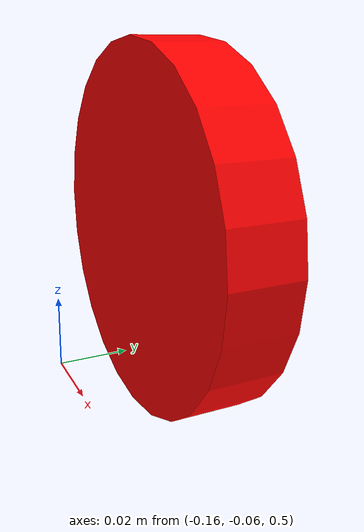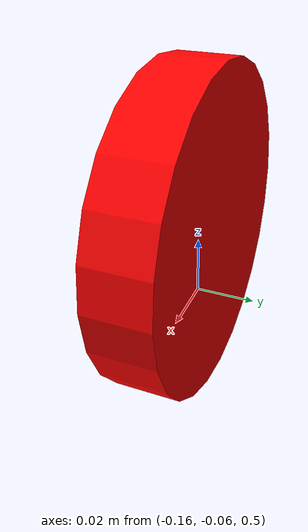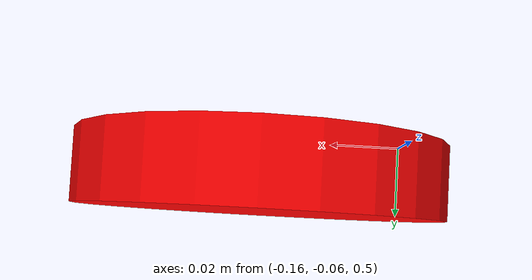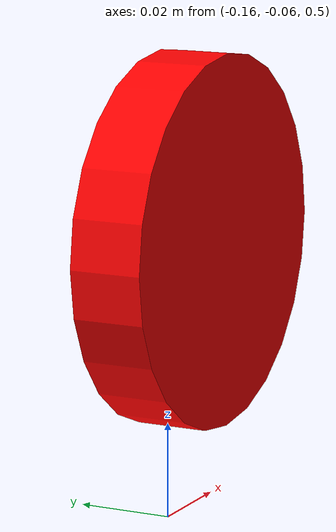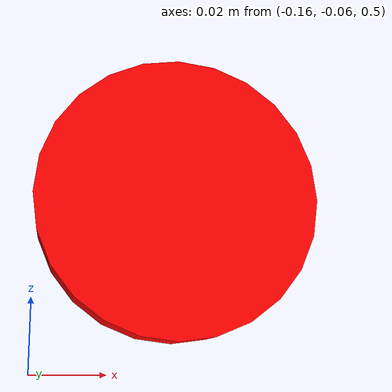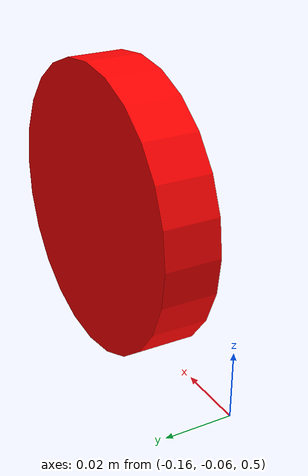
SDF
<?xml version="1.0"?>
<sdf version="1.6">
  <model name="traffic_light_red_lens">
    <static>false</static>
    <link name="lens">
      <gravity>false</gravity>
      <kinematic>true</kinematic>
      <visual name="red_visual">
        <pose>-0.12 -0.046 0.55 1.570796 0 0</pose>
        <cast_shadows>false</cast_shadows>
        <geometry><cylinder><radius>0.041</radius><length>0.016</length></cylinder></geometry>
        <material>
          <ambient>1.0 0.005 0.005 1</ambient>
          <diffuse>1.0 0.005 0.005 1</diffuse>
          <emissive>0.58 0.003 0.003 1</emissive>
          <specular>0.15 0.15 0.15 1</specular>
        </material>
      </visual>
    </link>
  </model>
</sdf>
